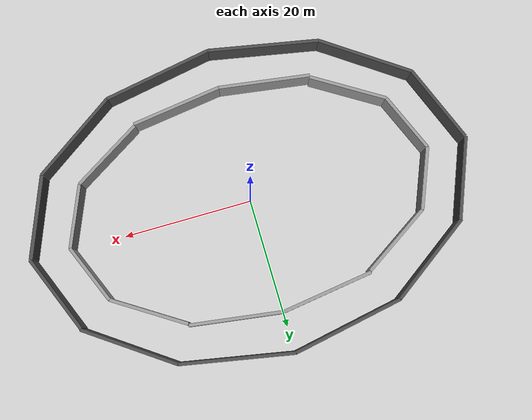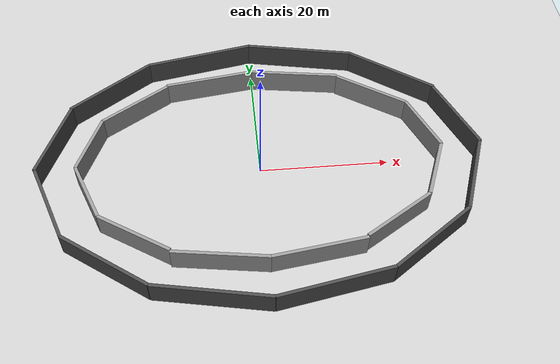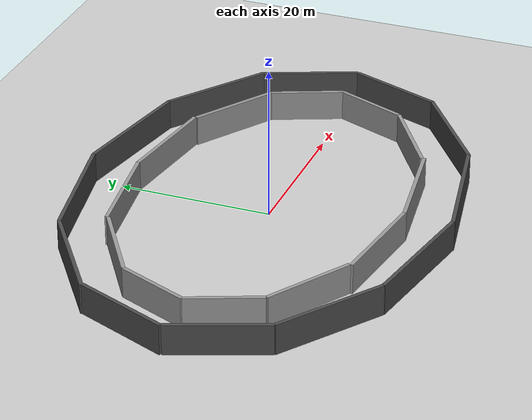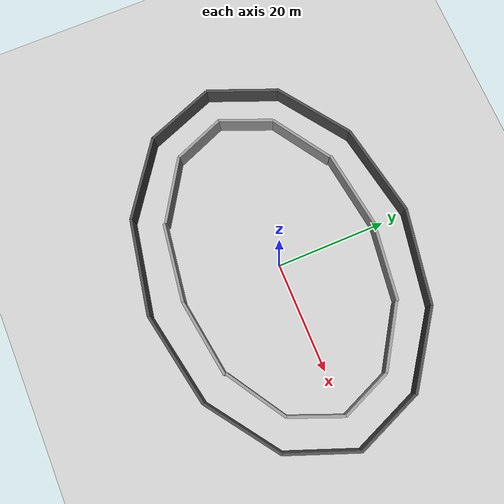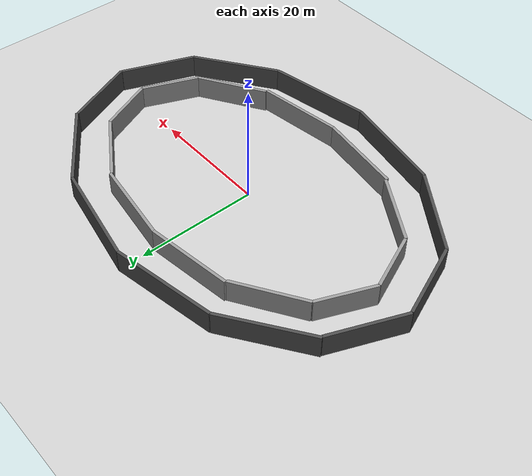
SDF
<?xml version="1.0" ?>
<sdf version="1.4">
  <world name="default">
    <include>
      <uri>model://ground_plane</uri>
    </include>
    <include>
      <uri>model://sun</uri>
    </include>

    <!-- Only one ROS interface plugin is required per world -->
    <plugin name="ros_interface_plugin" filename="librotors_gazebo_ros_interface_plugin.so"/>

    <spherical_coordinates>
      <surface_model>EARTH_WGS84</surface_model>
      <latitude_deg>47.3667</latitude_deg>
      <longitude_deg>8.5500</longitude_deg>
      <elevation>500.0</elevation>
      <heading_deg>0</heading_deg>
    </spherical_coordinates>

    <physics type='ode'>
      <ode>
        <solver>
          <type>quick</type>
          <iters>1000</iters>
          <sor>1.3</sor>
        </solver>
        <constraints>
          <cfm>0</cfm>
          <erp>0.2</erp>
          <contact_max_correcting_vel>100</contact_max_correcting_vel>
          <contact_surface_layer>0.001</contact_surface_layer>
        </constraints>
      </ode>
      <max_step_size>0.01</max_step_size>
      <real_time_factor>1</real_time_factor>
      <real_time_update_rate>100</real_time_update_rate>
      <gravity>0 0 -9.81</gravity>
    </physics>

    <!-- Outer Wall Segments (12 segments) -->
    <model name='outer_wall_segment_0'>
      <static>true</static>
      <pose>31.722 6.000 2.0 0 0 1.957</pose> <!-- Z=2.0 for 4m height -->
      <link name='link'>
        <collision name='collision'><geometry><box><size>12.837 0.5 4.0</size></box></geometry></collision> <!-- Height=4.0 -->
        <visual name='visual'><geometry><box><size>12.837 0.5 4.0</size></box></geometry> <!-- Height=4.0 -->
         <material><script><uri>file://media/materials/scripts/gazebo.material</uri><name>Gazebo/DarkGrey</name></script></material>
        </visual>
      </link>
    </model>
    <model name='outer_wall_segment_1'>
      <static>true</static>
      <pose>23.222 16.392 2.0 0 0 2.529</pose>
      <link name='link'>
        <collision name='collision'><geometry><box><size>15.225 0.5 4.0</size></box></geometry></collision> <!-- Height=4.0 -->
        <visual name='visual'><geometry><box><size>15.225 0.5 4.0</size></box></geometry> <!-- Height=4.0 -->
         <material><script><uri>file://media/materials/scripts/gazebo.material</uri><name>Gazebo/DarkGrey</name></script></material>
        </visual>
      </link>
    </model>
    <model name='outer_wall_segment_2'>
      <static>true</static>
      <pose>8.500 22.392 2.0 0 0 2.956</pose>
      <link name='link'>
        <collision name='collision'><geometry><box><size>17.303 0.5 4.0</size></box></geometry></collision> <!-- Height=4.0 -->
        <visual name='visual'><geometry><box><size>17.303 0.5 4.0</size></box></geometry> <!-- Height=4.0 -->
         <material><script><uri>file://media/materials/scripts/gazebo.material</uri><name>Gazebo/DarkGrey</name></script></material>
        </visual>
      </link>
    </model>
    <model name='outer_wall_segment_3'>
      <static>true</static>
      <pose>-8.500 22.392 2.0 0 0 -2.956</pose>
      <link name='link'>
        <collision name='collision'><geometry><box><size>17.303 0.5 4.0</size></box></geometry></collision> <!-- Height=4.0 -->
        <visual name='visual'><geometry><box><size>17.303 0.5 4.0</size></box></geometry> <!-- Height=4.0 -->
         <material><script><uri>file://media/materials/scripts/gazebo.material</uri><name>Gazebo/DarkGrey</name></script></material>
        </visual>
      </link>
    </model>
    <model name='outer_wall_segment_4'>
      <static>true</static>
      <pose>-23.222 16.392 2.0 0 0 -2.529</pose>
      <link name='link'>
        <collision name='collision'><geometry><box><size>15.225 0.5 4.0</size></box></geometry></collision> <!-- Height=4.0 -->
        <visual name='visual'><geometry><box><size>15.225 0.5 4.0</size></box></geometry> <!-- Height=4.0 -->
         <material><script><uri>file://media/materials/scripts/gazebo.material</uri><name>Gazebo/DarkGrey</name></script></material>
        </visual>
      </link>
    </model>
    <model name='outer_wall_segment_5'>
      <static>true</static>
      <pose>-31.722 6.000 2.0 0 0 -1.957</pose>
      <link name='link'>
        <collision name='collision'><geometry><box><size>12.837 0.5 4.0</size></box></geometry></collision> <!-- Height=4.0 -->
        <visual name='visual'><geometry><box><size>12.837 0.5 4.0</size></box></geometry> <!-- Height=4.0 -->
         <material><script><uri>file://media/materials/scripts/gazebo.material</uri><name>Gazebo/DarkGrey</name></script></material>
        </visual>
      </link>
    </model>
    <model name='outer_wall_segment_6'>
      <static>true</static>
      <pose>-31.722 -6.000 2.0 0 0 -1.204</pose>
      <link name='link'>
        <collision name='collision'><geometry><box><size>12.837 0.5 4.0</size></box></geometry></collision> <!-- Height=4.0 -->
        <visual name='visual'><geometry><box><size>12.837 0.5 4.0</size></box></geometry> <!-- Height=4.0 -->
         <material><script><uri>file://media/materials/scripts/gazebo.material</uri><name>Gazebo/DarkGrey</name></script></material>
        </visual>
      </link>
    </model>
    <model name='outer_wall_segment_7'>
      <static>true</static>
      <pose>-23.222 -16.392 2.0 0 0 -0.614</pose>
      <link name='link'>
        <collision name='collision'><geometry><box><size>15.225 0.5 4.0</size></box></geometry></collision> <!-- Height=4.0 -->
        <visual name='visual'><geometry><box><size>15.225 0.5 4.0</size></box></geometry> <!-- Height=4.0 -->
         <material><script><uri>file://media/materials/scripts/gazebo.material</uri><name>Gazebo/DarkGrey</name></script></material>
        </visual>
      </link>
    </model>
    <model name='outer_wall_segment_8'>
      <static>true</static>
      <pose>-8.500 -22.392 2.0 0 0 -0.185</pose>
      <link name='link'>
        <collision name='collision'><geometry><box><size>17.303 0.5 4.0</size></box></geometry></collision> <!-- Height=4.0 -->
        <visual name='visual'><geometry><box><size>17.303 0.5 4.0</size></box></geometry> <!-- Height=4.0 -->
         <material><script><uri>file://media/materials/scripts/gazebo.material</uri><name>Gazebo/DarkGrey</name></script></material>
        </visual>
      </link>
    </model>
    <model name='outer_wall_segment_9'>
      <static>true</static>
      <pose>8.500 -22.392 2.0 0 0 0.185</pose>
      <link name='link'>
        <collision name='collision'><geometry><box><size>17.303 0.5 4.0</size></box></geometry></collision> <!-- Height=4.0 -->
        <visual name='visual'><geometry><box><size>17.303 0.5 4.0</size></box></geometry> <!-- Height=4.0 -->
         <material><script><uri>file://media/materials/scripts/gazebo.material</uri><name>Gazebo/DarkGrey</name></script></material>
        </visual>
      </link>
    </model>
    <model name='outer_wall_segment_10'>
      <static>true</static>
      <pose>23.222 -16.392 2.0 0 0 0.614</pose>
      <link name='link'>
        <collision name='collision'><geometry><box><size>15.225 0.5 4.0</size></box></geometry></collision> <!-- Height=4.0 -->
        <visual name='visual'><geometry><box><size>15.225 0.5 4.0</size></box></geometry> <!-- Height=4.0 -->
         <material><script><uri>file://media/materials/scripts/gazebo.material</uri><name>Gazebo/DarkGrey</name></script></material>
        </visual>
      </link>
    </model>
    <model name='outer_wall_segment_11'>
      <static>true</static>
      <pose>31.722 -6.000 2.0 0 0 1.204</pose>
      <link name='link'>
        <collision name='collision'><geometry><box><size>12.837 0.5 4.0</size></box></geometry></collision> <!-- Height=4.0 -->
        <visual name='visual'><geometry><box><size>12.837 0.5 4.0</size></box></geometry> <!-- Height=4.0 -->
         <material><script><uri>file://media/materials/scripts/gazebo.material</uri><name>Gazebo/DarkGrey</name></script></material>
        </visual>
      </link>
    </model>
<!-- Inner Wall Segments (12 segments) -->
    <model name='inner_wall_segment_0'>
      <static>true</static>
      <pose>26.124 4.500 2.0 0 0 1.965</pose>
      <link name='link'>
        <collision name='collision'><geometry><box><size>9.753 0.5 4.0</size></box></geometry></collision>
        <visual name='visual'><geometry><box><size>9.753 0.5 4.0</size></box></geometry>
         <material><script><uri>file://media/materials/scripts/gazebo.material</uri><name>Gazebo/Grey</name></script></material>
        </visual>
      </link>
    </model>
    <model name='inner_wall_segment_1'>
      <static>true</static>
      <pose>19.124 12.294 2.0 0 0 2.570</pose>
      <link name='link'>
        <collision name='collision'><geometry><box><size>12.183 0.5 4.0</size></box></geometry></collision>
        <visual name='visual'><geometry><box><size>12.183 0.5 4.0</size></box></geometry>
         <material><script><uri>file://media/materials/scripts/gazebo.material</uri><name>Gazebo/Grey</name></script></material>
        </visual>
      </link>
    </model>
    <model name='inner_wall_segment_2'>
      <static>true</static>
      <pose>7.000 16.794 2.0 0 0 3.001</pose>
      <link name='link'>
        <collision name='collision'><geometry><box><size>14.206 0.5 4.0</size></box></geometry></collision>
        <visual name='visual'><geometry><box><size>14.206 0.5 4.0</size></box></geometry>
         <material><script><uri>file://media/materials/scripts/gazebo.material</uri><name>Gazebo/Grey</name></script></material>
        </visual>
      </link>
    </model>
    <model name='inner_wall_segment_3'>
      <static>true</static>
      <pose>-7.000 16.794 2.0 0 0 -3.001</pose>
      <link name='link'>
        <collision name='collision'><geometry><box><size>14.206 0.5 4.0</size></box></geometry></collision>
        <visual name='visual'><geometry><box><size>14.206 0.5 4.0</size></box></geometry>
         <material><script><uri>file://media/materials/scripts/gazebo.material</uri><name>Gazebo/Grey</name></script></material>
        </visual>
      </link>
    </model>
    <model name='inner_wall_segment_4'>
      <static>true</static>
      <pose>-19.124 12.294 2.0 0 0 -2.570</pose>
      <link name='link'>
        <collision name='collision'><geometry><box><size>12.183 0.5 4.0</size></box></geometry></collision>
        <visual name='visual'><geometry><box><size>12.183 0.5 4.0</size></box></geometry>
         <material><script><uri>file://media/materials/scripts/gazebo.material</uri><name>Gazebo/Grey</name></script></material>
        </visual>
      </link>
    </model>
    <model name='inner_wall_segment_5'>
      <static>true</static>
      <pose>-26.124 4.500 2.0 0 0 -1.965</pose>
      <link name='link'>
        <collision name='collision'><geometry><box><size>9.753 0.5 4.0</size></box></geometry></collision>
        <visual name='visual'><geometry><box><size>9.753 0.5 4.0</size></box></geometry>
         <material><script><uri>file://media/materials/scripts/gazebo.material</uri><name>Gazebo/Grey</name></script></material>
        </visual>
      </link>
    </model>
    <model name='inner_wall_segment_6'>
      <static>true</static>
      <pose>-26.124 -4.500 2.0 0 0 -1.184</pose>
      <link name='link'>
        <collision name='collision'><geometry><box><size>9.753 0.5 4.0</size></box></geometry></collision>
        <visual name='visual'><geometry><box><size>9.753 0.5 4.0</size></box></geometry>
         <material><script><uri>file://media/materials/scripts/gazebo.material</uri><name>Gazebo/Grey</name></script></material>
        </visual>
      </link>
    </model>
    <model name='inner_wall_segment_7'>
      <static>true</static>
      <pose>-19.124 -12.294 2.0 0 0 -0.559</pose>
      <link name='link'>
        <collision name='collision'><geometry><box><size>12.183 0.5 4.0</size></box></geometry></collision>
        <visual name='visual'><geometry><box><size>12.183 0.5 4.0</size></box></geometry>
         <material><script><uri>file://media/materials/scripts/gazebo.material</uri><name>Gazebo/Grey</name></script></material>
        </visual>
      </link>
    </model>
    <model name='inner_wall_segment_8'>
      <static>true</static>
      <pose>-7.000 -16.794 2.0 0 0 -0.141</pose>
      <link name='link'>
        <collision name='collision'><geometry><box><size>14.206 0.5 4.0</size></box></geometry></collision>
        <visual name='visual'><geometry><box><size>14.206 0.5 4.0</size></box></geometry>
         <material><script><uri>file://media/materials/scripts/gazebo.material</uri><name>Gazebo/Grey</name></script></material>
        </visual>
      </link>
    </model>
    <model name='inner_wall_segment_9'>
      <static>true</static>
      <pose>7.000 -16.794 2.0 0 0 0.141</pose>
      <link name='link'>
        <collision name='collision'><geometry><box><size>14.206 0.5 4.0</size></box></geometry></collision>
        <visual name='visual'><geometry><box><size>14.206 0.5 4.0</size></box></geometry>
         <material><script><uri>file://media/materials/scripts/gazebo.material</uri><name>Gazebo/Grey</name></script></material>
        </visual>
      </link>
    </model>
    <model name='inner_wall_segment_10'>
      <static>true</static>
      <pose>19.124 -12.294 2.0 0 0 0.559</pose>
      <link name='link'>
        <collision name='collision'><geometry><box><size>12.183 0.5 4.0</size></box></geometry></collision>
        <visual name='visual'><geometry><box><size>12.183 0.5 4.0</size></box></geometry>
         <material><script><uri>file://media/materials/scripts/gazebo.material</uri><name>Gazebo/Grey</name></script></material>
        </visual>
      </link>
    </model>
    <model name='inner_wall_segment_11'>
      <static>true</static>
      <pose>26.124 -4.500 2.0 0 0 1.184</pose>
      <link name='link'>
        <collision name='collision'><geometry><box><size>9.753 0.5 4.0</size></box></geometry></collision>
        <visual name='visual'><geometry><box><size>9.753 0.5 4.0</size></box></geometry>
         <material><script><uri>file://media/materials/scripts/gazebo.material</uri><name>Gazebo/Grey</name></script></material>
        </visual>
      </link>
    </model>
 </world>
</sdf>
